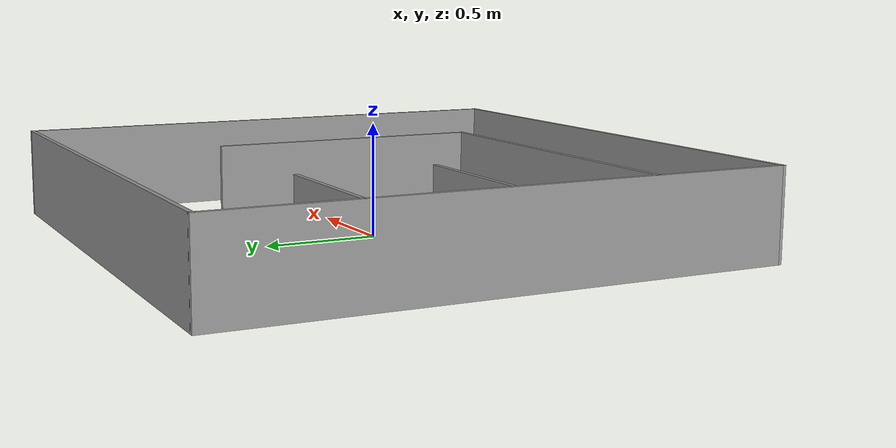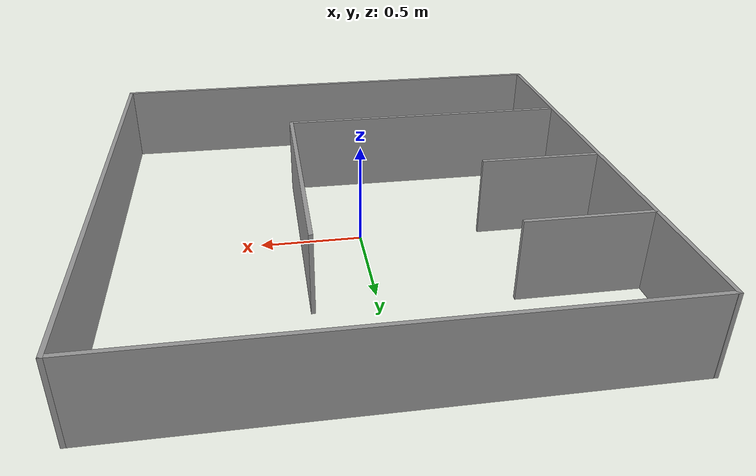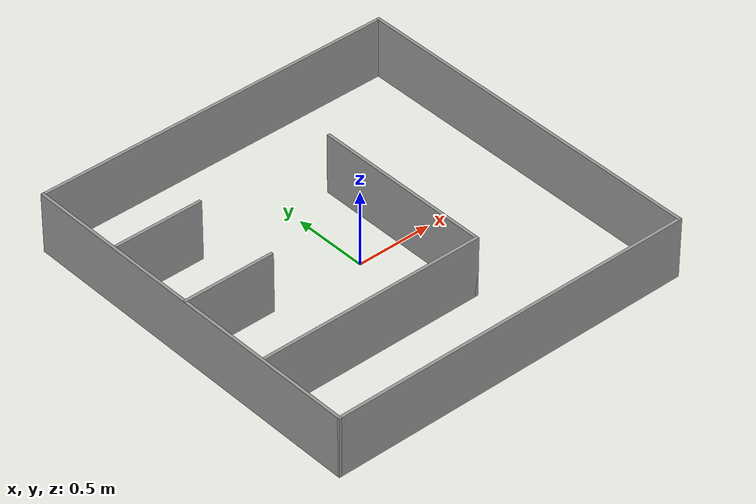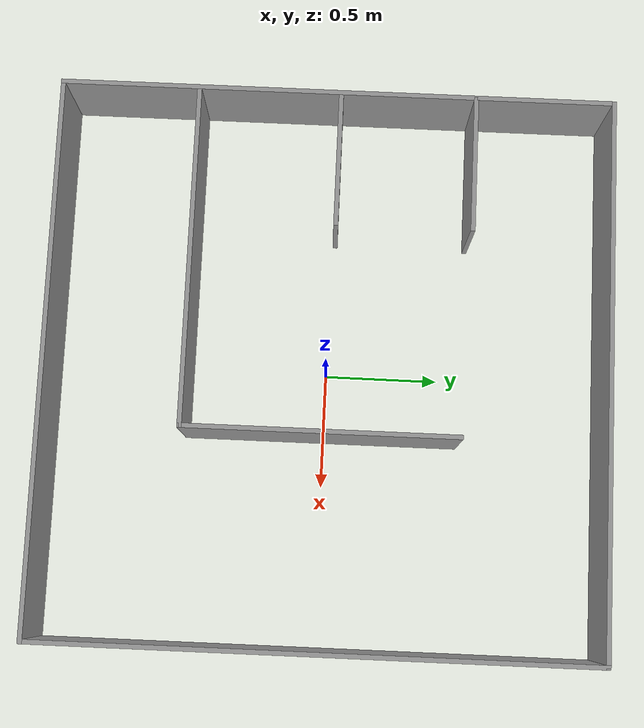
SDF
<?xml version='1.0'?>
<sdf version='1.7'>
  <model name='warehouse1'>
    <pose>0.003998 0.004 0 0 -0 0</pose>
    <link name='Wall_0'>
      <collision name='Wall_0_Collision'>
        <geometry>
          <box>
            <size>2.439 0.02 0.4</size>
          </box>
        </geometry>
        <pose>0 0 0.2 0 -0 0</pose>
      </collision>
      <visual name='Wall_0_Visual'>
        <pose>0 0 0.2 0 -0 0</pose>
        <geometry>
          <box>
            <size>2.439 0.02 0.4</size>
          </box>
        </geometry>
        <material>
          <script>
            <uri>file://media/materials/scripts/gazebo.material</uri>
            <name>Gazebo/Grey</name>
          </script>
          <ambient>1 1 1 1</ambient>
        </material>
        <meta>
          <layer>0</layer>
        </meta>
      </visual>
      <pose>0.000502 -1.21 0 0 -0 3.14159</pose>
    </link>
    <link name='Wall_11'>
      <collision name='Wall_11_Collision'>
        <geometry>
          <box>
            <size>1.512 0.02 0.4</size>
          </box>
        </geometry>
        <pose>0 0 0.2 0 -0 0</pose>
      </collision>
      <visual name='Wall_11_Visual'>
        <pose>0 0 0.2 0 -0 0</pose>
        <geometry>
          <box>
            <size>1.512 0.02 0.4</size>
          </box>
        </geometry>
        <material>
          <script>
            <uri>file://media/materials/scripts/gazebo.material</uri>
            <name>Gazebo/Grey</name>
          </script>
          <ambient>1 1 1 1</ambient>
        </material>
        <meta>
          <layer>0</layer>
        </meta>
      </visual>
      <pose>-0.457998 -0.61 0 0 -0 0</pose>
    </link>
    <link name='Wall_13'>
      <collision name='Wall_13_Collision'>
        <geometry>
          <box>
            <size>1.21 0.02 0.4</size>
          </box>
        </geometry>
        <pose>0 0 0.2 0 -0 0</pose>
      </collision>
      <visual name='Wall_13_Visual'>
        <pose>0 0 0.2 0 -0 0</pose>
        <geometry>
          <box>
            <size>1.21 0.02 0.4</size>
          </box>
        </geometry>
        <material>
          <script>
            <uri>file://media/materials/scripts/gazebo.material</uri>
            <name>Gazebo/Grey</name>
          </script>
          <ambient>1 1 1 1</ambient>
        </material>
        <meta>
          <layer>0</layer>
        </meta>
      </visual>
      <pose>0.288002 -0.015 0 0 -0 1.5708</pose>
    </link>
    <link name='Wall_15'>
      <collision name='Wall_15_Collision'>
        <geometry>
          <box>
            <size>0.605 0.02 0.4</size>
          </box>
        </geometry>
        <pose>0 0 0.2 0 -0 0</pose>
      </collision>
      <visual name='Wall_15_Visual'>
        <pose>0 0 0.2 0 -0 0</pose>
        <geometry>
          <box>
            <size>0.605 0.02 0.4</size>
          </box>
        </geometry>
        <material>
          <script>
            <uri>file://media/materials/scripts/gazebo.material</uri>
            <name>Gazebo/Grey</name>
          </script>
          <ambient>1 1 1 1</ambient>
        </material>
        <meta>
          <layer>0</layer>
        </meta>
      </visual>
      <pose>-0.911498 0.606 0 0 -0 0</pose>
    </link>
    <link name='Wall_17'>
      <collision name='Wall_17_Collision'>
        <geometry>
          <box>
            <size>0.605 0.02 0.4</size>
          </box>
        </geometry>
        <pose>0 0 0.2 0 -0 0</pose>
      </collision>
      <visual name='Wall_17_Visual'>
        <pose>0 0 0.2 0 -0 0</pose>
        <geometry>
          <box>
            <size>0.605 0.02 0.4</size>
          </box>
        </geometry>
        <material>
          <script>
            <uri>file://media/materials/scripts/gazebo.material</uri>
            <name>Gazebo/Grey</name>
          </script>
          <ambient>1 1 1 1</ambient>
        </material>
        <meta>
          <layer>0</layer>
        </meta>
      </visual>
      <pose>-0.911498 0.012903 0 0 -0 0</pose>
    </link>
    <link name='Wall_2'>
      <collision name='Wall_2_Collision'>
        <geometry>
          <box>
            <size>2.44 0.02 0.4</size>
          </box>
        </geometry>
        <pose>0 0 0.2 0 -0 0</pose>
      </collision>
      <visual name='Wall_2_Visual'>
        <pose>0 0 0.2 0 -0 0</pose>
        <geometry>
          <box>
            <size>2.44 0.02 0.4</size>
          </box>
        </geometry>
        <material>
          <script>
            <uri>file://media/materials/scripts/gazebo.material</uri>
            <name>Gazebo/Grey</name>
          </script>
          <ambient>1 1 1 1</ambient>
        </material>
        <meta>
          <layer>0</layer>
        </meta>
      </visual>
      <pose>1.21 -0 0 0 -0 1.5708</pose>
    </link>
    <link name='Wall_4'>
      <collision name='Wall_4_Collision'>
        <geometry>
          <box>
            <size>2.44 0.02 0.4</size>
          </box>
        </geometry>
        <pose>0 0 0.2 0 -0 0</pose>
      </collision>
      <visual name='Wall_4_Visual'>
        <pose>0 0 0.2 0 -0 0</pose>
        <geometry>
          <box>
            <size>2.44 0.02 0.4</size>
          </box>
        </geometry>
        <material>
          <script>
            <uri>file://media/materials/scripts/gazebo.material</uri>
            <name>Gazebo/Grey</name>
          </script>
          <ambient>1 1 1 1</ambient>
        </material>
        <meta>
          <layer>0</layer>
        </meta>
      </visual>
      <pose>2e-06 1.21 0 0 -0 3.14159</pose>
    </link>
    <link name='Wall_5'>
      <collision name='Wall_5_Collision'>
        <geometry>
          <box>
            <size>2.44 0.02 0.4</size>
          </box>
        </geometry>
        <pose>0 0 0.2 0 -0 0</pose>
      </collision>
      <visual name='Wall_5_Visual'>
        <pose>0 0 0.2 0 -0 0</pose>
        <geometry>
          <box>
            <size>2.44 0.02 0.4</size>
          </box>
        </geometry>
        <material>
          <script>
            <uri>file://media/materials/scripts/gazebo.material</uri>
            <name>Gazebo/Grey</name>
          </script>
          <ambient>1 1 1 1</ambient>
        </material>
        <meta>
          <layer>0</layer>
        </meta>
      </visual>
      <pose>-1.2095 0 0 0 -0 -1.57038</pose>
    </link>
    <static>1</static>
  </model>
</sdf>
